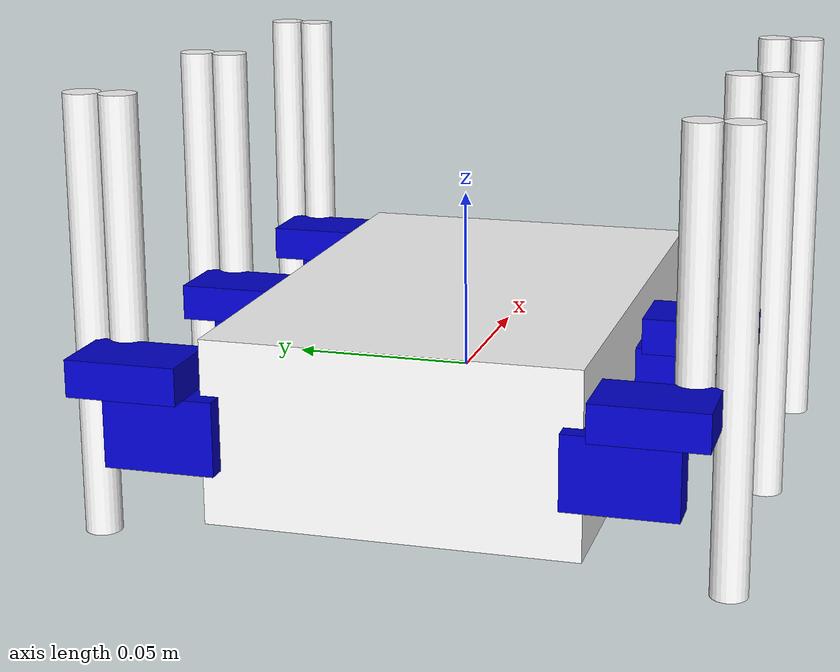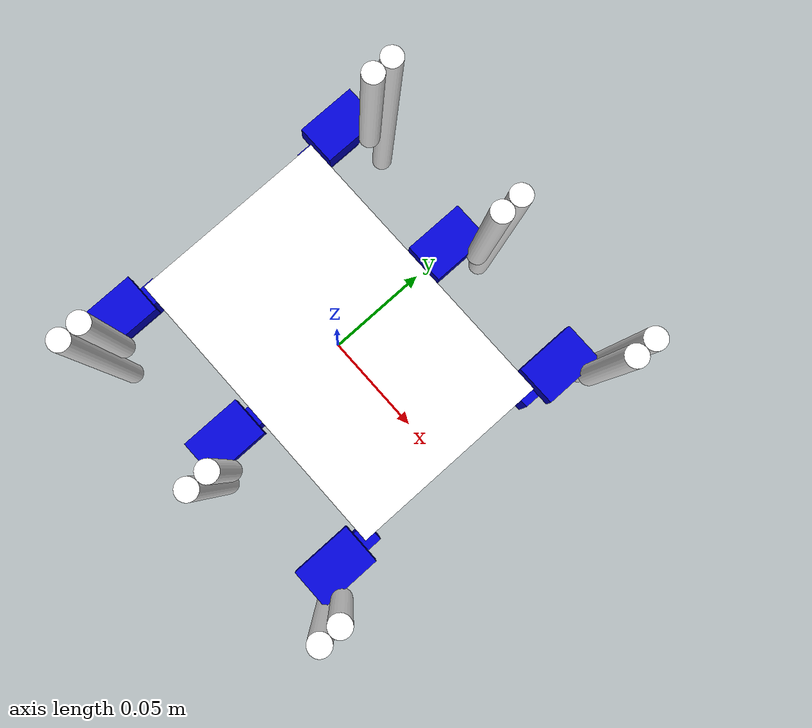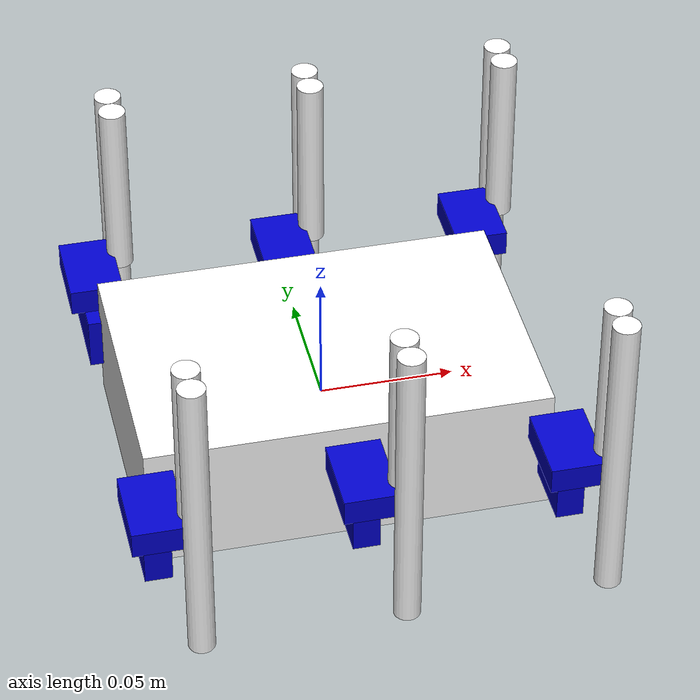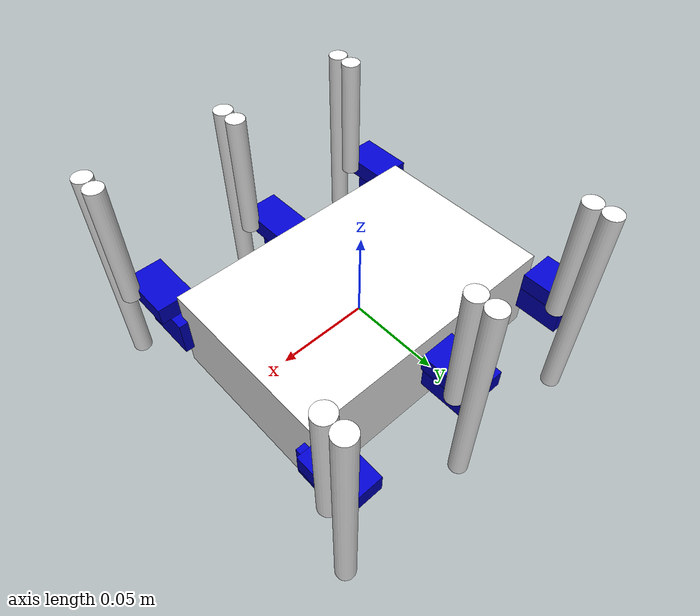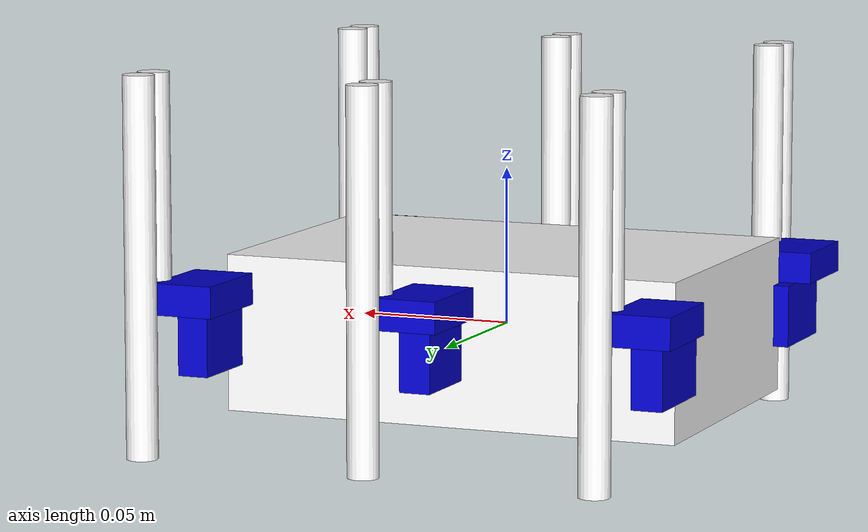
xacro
<?xml version="1.0"?>
<robot name="spider" xmlns:xacro="http://www.ros.org/wiki/xacro">
<xacro:include filename="$(find spider_description)/materials/materials.xacro" />
<xacro:include filename="$(find spider_description)/urdf/spider.gazebo" />
<xacro:include filename="$(find spider_description)/macros/inertia.xacro" />
<xacro:include filename="$(find spider_description)/macros/leg.xacro" />

<xacro:property name="leg_a_length" value="0.07"/>
<xacro:property name="leg_b_length" value="0.12"/>
<xacro:property name="leg_radius" value="0.005"/>
<xacro:property name="leg_mass" value="0.05"/>

<xacro:property name="servo_length" value="0.02"/>
<xacro:property name="servo_width" value="0.01"/>
<xacro:property name="servo_height" value="0.03"/>
<xacro:property name="servo_mass" value="0.1"/>

<xacro:property name="body_length" value="0.15"/>
<xacro:property name="body_width" value="0.10"/>
<xacro:property name="body_height" value="0.05"/>
<xacro:property name="body_mass" value="0.5"/>

<xacro:property name="servo_effort" value="1000"/>
<xacro:property name="servo_velocity" value="3"/>

<!-- Links -->

<link name="base_link"/>

<link name="body">
	<collision>
		<origin xyz="0 0 0" rpy="0 0 0"/>
		<geometry>
			<box size="${body_length} ${body_width} ${body_height}"/>
		</geometry>
	</collision>

	<visual>
		<origin xyz="0 0 0" rpy="0 0 0"/>
		<geometry>
			<box size="${body_length} ${body_width} ${body_height}"/>
		</geometry>
		<material name="white"/>
	</visual>

	<xacro:box_inertial m="${body_mass}" x="${body_length}" y="${body_width}" z="${body_height}"/>
</link>

<make_leg name="FL" reflect="0" parent="body" xpos="${body_length/2}"/>
<make_leg name="FR" reflect="1" parent="body" xpos="${body_length/2}"/>
<make_leg name="ML" reflect="0" parent="body" xpos="${0}"/>
<make_leg name="MR" reflect="1" parent="body" xpos="${0}"/>
<make_leg name="BL" reflect="0" parent="body" xpos="${-body_length/2}"/>
<make_leg name="BR" reflect="1" parent="body" xpos="${-body_length/2}"/>

<joint name="base_joint" type="fixed">
	<parent link="base_link"/>
	<child link="body"/>
</joint>

</robot>

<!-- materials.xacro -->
<robot>
	<material name="black">
		<color rgba="0.0 0.0 0.0 1.0"/>
	</material>

	<material name="blue">
		<color rgba="0.0 0.0 0.8 1.0"/>
	</material>

	<material name="green">
		<color rgba="0.0 0.8 0.0 1.0"/>
	</material>

	<material name="gray">
		<color rgba="0.2 0.2 0.2 1.0"/>
	</material>

	<material name="orange">
		<color rgba="${255/255} ${108/255} ${10/255} 1.0"/>
	</material>

	<material name="brown">
		<color rgba="${222/255} ${207/255} ${195/255} 1.0"/>
	</material>

	<material name="red">
		<color rgba="0.8 0.0 0.0 1.0"/>
	</material>

	<material name="white">
		<color rgba="1.0 1.0 1.0 1.0"/>
	</material>
</robot>

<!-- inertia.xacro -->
<robot name="spider" xmlns:xacro="http://www.ros.org/wiki/xacro">
<xacro:macro name="default_inertial" params="m">
    <inertial>
            <mass value="${m}" />
            <inertia ixx="1.0" ixy="0.0" ixz="0.0"
                 iyy="1.0" iyz="0.0"
                 izz="1.0" />
    </inertial>
</xacro:macro>

<xacro:macro name="box_inertial" params="m x y z">
    <inertial>
            <mass value="${m}"/>
            <inertia
              ixx="${m*(y*y+z*z)/12}" ixy="0" ixz="0"
              iyy="${m*(x*x+z*z)/12}" iyz="0"
              izz="${m*(x*x+z*z)/12}"/>
    </inertial>
</xacro:macro>

<xacro:macro name="cylinder_inertial" params="m r h">
    <inertial>
            <mass value="${m}"/>
            <inertia
              ixx="${m*(3*r*r+h*h)/12}" ixy="0" ixz="0"
              iyy="${m*(3*r*r+h*h)/12}" iyz="0"
              izz="${m*r*r/2}" />
    </inertial>
</xacro:macro>

<xacro:macro name="sphere_inertial" params="m r">
    <inertial>
            <mass value="${m}"/>
            <inertia
              ixx="${2*m*r*r/5}" ixy="0" ixz="0"
              iyy="${2*m*r*r/5}" iyz = "0"
              izz="${2*m*r*r/5}"/>
    </inertial>
</xacro:macro>
</robot>

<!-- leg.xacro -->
<robot name="spider" xmlns:xacro="http://www.ros.org/wiki/xacro">
<macro name="make_leg" params="name reflect parent xpos">
  <link name="${name}_a_servo">
    <collision>
      <origin xyz="0 0 0" rpy="0 0 0"/>
      <geometry>
        <box size="${servo_length} ${servo_width} ${servo_height}"/>
      </geometry>
    </collision>

    <visual>
      <origin xyz="0 0 0" rpy="0 0 0"/>
      <geometry>
        <box size="${servo_length} ${servo_width} ${servo_height}"/>
      </geometry>
      <material name="blue"/>
    </visual>

    <xacro:default_inertial m="${servo_mass}"/>
  </link>

  <link name="${name}_b_servo">
    <collision>
      <origin xyz="0 0 0" rpy="0 0 0"/>
      <geometry>
        <box size="${servo_length} ${servo_width} ${servo_height}"/>
      </geometry>
    </collision>

    <visual>
      <origin xyz="0 0 0" rpy="0 0 0"/>
      <geometry>
        <box size="${servo_length} ${servo_width} ${servo_height}"/>
      </geometry>
      <material name="blue"/>
    </visual>

    <xacro:default_inertial m="${servo_mass}"/>
  </link>

  <link name="${name}_proximal_leg">
    <collision>
      <origin xyz="0 0 ${leg_a_length/2}" rpy="0 0 0"/>
      <geometry>
        <cylinder length="${leg_a_length}" radius="${leg_radius}"/>
      </geometry>
    </collision>

    <visual>
      <origin xyz="0 0 ${leg_a_length/2}" rpy="0 0 0"/>
      <geometry>
        <cylinder length="${leg_a_length}" radius="${leg_radius}"/>
      </geometry>
      <material name="white"/>
    </visual>

    <xacro:default_inertial m="${leg_mass}"/>
  </link>

  <link name="${name}_distal_leg">
    <collision>
      <origin xyz="0 0 ${leg_b_length/2}" rpy="0 0 0"/>
      <geometry>
        <cylinder length="${leg_b_length}" radius="${leg_radius}"/>
      </geometry>
    </collision>

    <visual>
      <origin xyz="0 0 ${leg_b_length/2}" rpy="0 0 0"/>
      <geometry>
        <cylinder length="${leg_b_length}" radius="${leg_radius}"/>
      </geometry>
      <material name="white"/>
    </visual>

    <xacro:default_inertial m="${leg_mass}"/>
  </link>

  <joint name="${name}_leg_fix" type="fixed">
    <parent link="body"/>
    <child link="${name}_a_servo"/>
    <origin xyz="${xpos} ${(-1)*((body_width+servo_length)/2)*(2*reflect-1)} 0" rpy="0 -1.57 ${(-1)*(1.57)*(2*reflect-1)}"/>
  </joint>

  <joint name="${name}_a_joint" type="revolute">
    <parent link="${name}_a_servo"/>
    <child link="${name}_b_servo"/>
    <origin xyz="${(servo_length+servo_width)/2} 0 ${-servo_height/4}" rpy="0 0 ${(1.57)*(2*reflect-1)}"/>
    <axis xyz="0 1 0"/>
    <limit lower="-1.57" upper="1.57" effort="${servo_effort}" velocity="${servo_velocity}"/>
  </joint>

  <joint name="${name}_b_joint" type="revolute">
    <parent link="${name}_b_servo"/>
    <child link="${name}_proximal_leg"/>
    <origin xyz="${(servo_length+leg_radius)/2} 0 ${-servo_height/4}" rpy="${(1.57)*(2*reflect-1)} 0 0"/>
    <axis xyz="1 0 0"/>
    <limit lower="${(1-reflect)*(-3.14)+(reflect)*(0)}" upper="${(1-reflect)*(0)+(reflect)*(3.14)}" effort="${servo_effort}" velocity="${servo_velocity}"/>
  </joint>

  <joint name="${name}_c_joint" type="revolute">
    <parent link="${name}_proximal_leg"/>
    <child link="${name}_distal_leg"/>
    <origin xyz="0 ${(-1)*(2*reflect-1)*(leg_radius*2)} ${leg_a_length}" rpy="0 3.14 0"/>
    <axis xyz="1 0 0"/>
    <limit lower="${(1-reflect)*(-3.14)+(reflect)*(0)}" upper="${(1-reflect)*(0)+(reflect)*(3.14)}" effort="${servo_effort}" velocity="${servo_velocity}"/>
  </joint>

  <transmission name="${name}_a_transmission">
    <type>transmission_interface/SimpleTransmission</type>
    <joint name="${name}_a_joint">
      <hardwareInterface>PositionJointInterface</hardwareInterface>
    </joint>
    <actuator name="${name}_a_joint_leg_actuator">
      <hardwareInterface>PositionJointInterface</hardwareInterface>
      <mechanicalReduction>10</mechanicalReduction>
    </actuator>
  </transmission>

  <transmission name="${name}_b_transmission">
    <type>transmission_interface/SimpleTransmission</type>
    <joint name="${name}_b_joint">
      <hardwareInterface>PositionJointInterface</hardwareInterface>
    </joint>
    <actuator name="${name}_b_joint_leg_actuator">
      <hardwareInterface>PositionJointInterface</hardwareInterface>
      <mechanicalReduction>10</mechanicalReduction>
    </actuator>
  </transmission>

  <transmission name="${name}_c_transmission">
    <type>transmission_interface/SimpleTransmission</type>
    <joint name="${name}_c_joint">
      <hardwareInterface>PositionJointInterface</hardwareInterface>
    </joint>
    <actuator name="${name}_c_joint_leg_actuator">
      <hardwareInterface>PositionJointInterface</hardwareInterface>
      <mechanicalReduction>10</mechanicalReduction>
    </actuator>
  </transmission>
</macro>
</robot>
